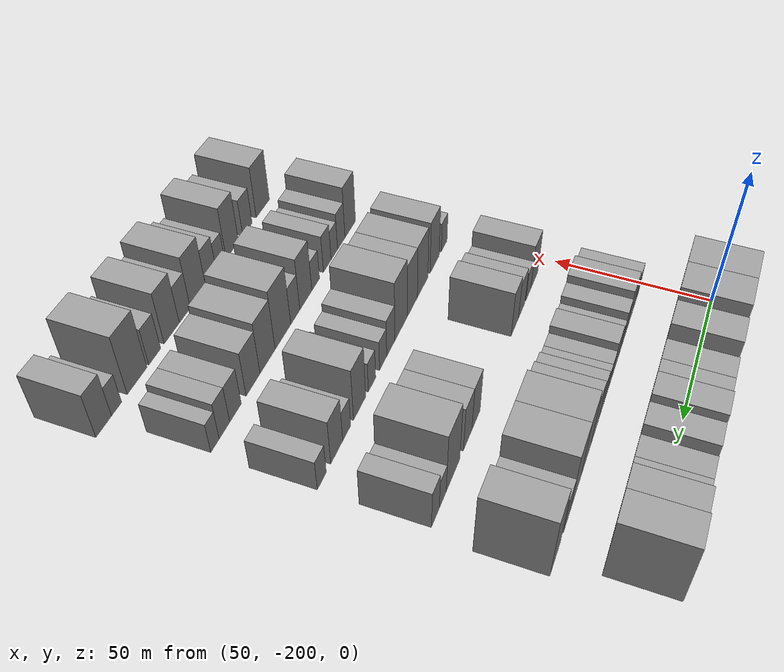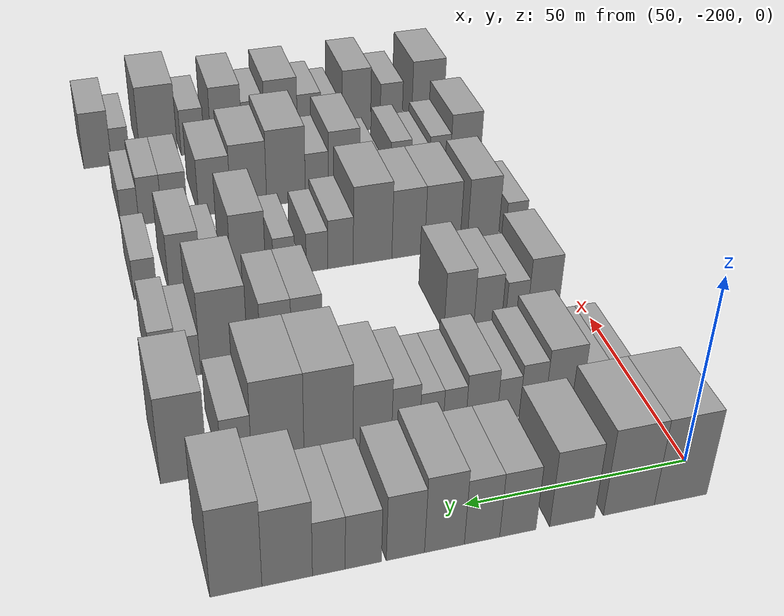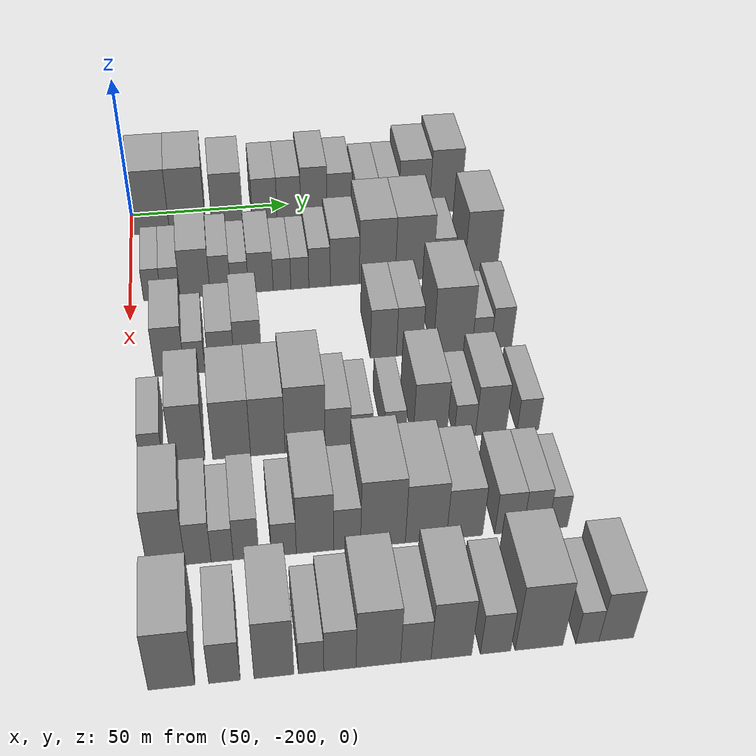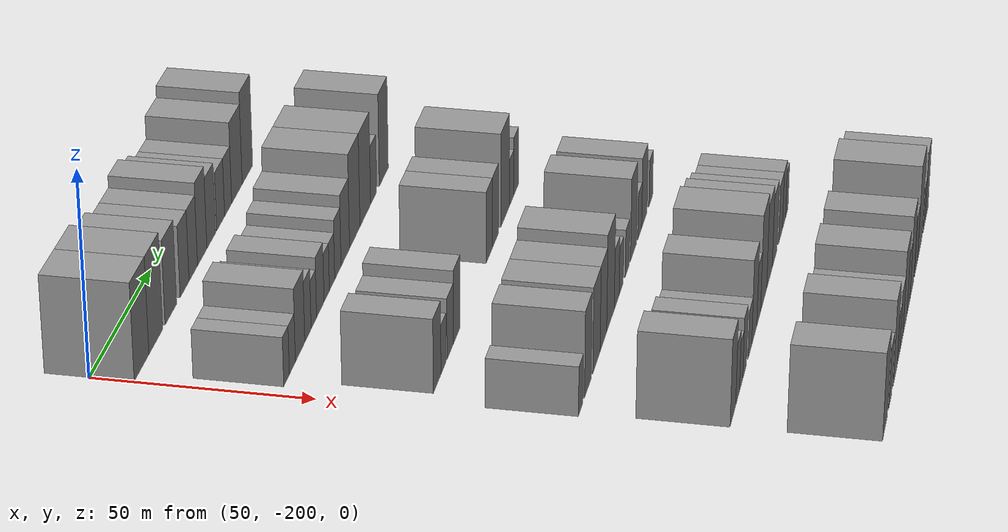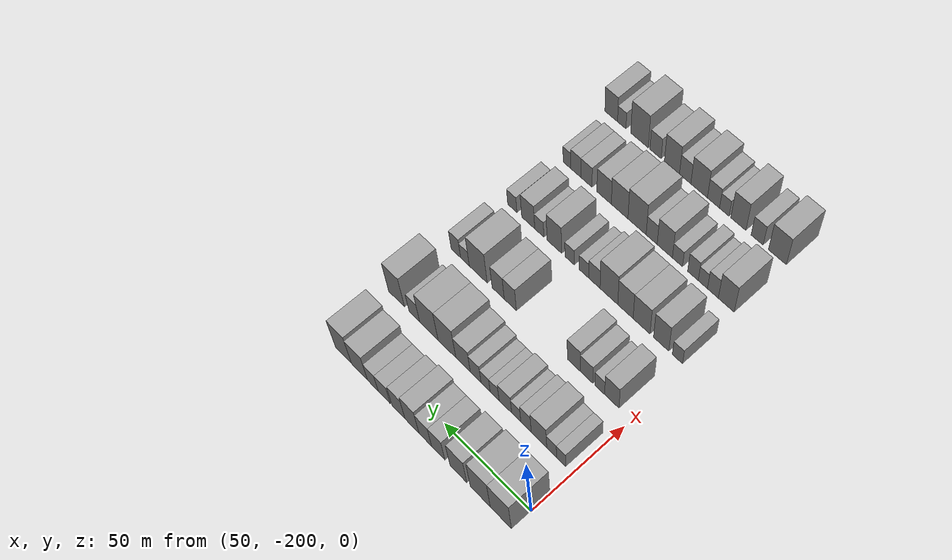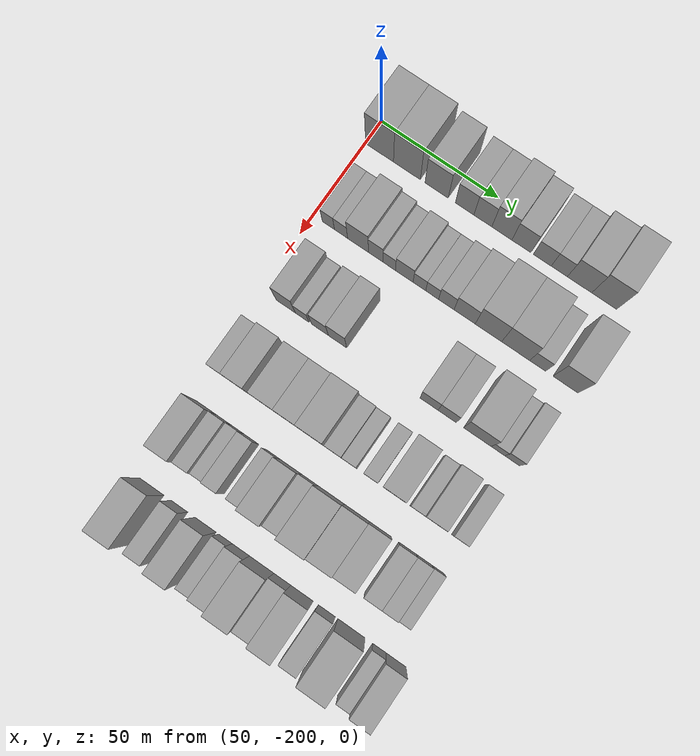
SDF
<sdf version="1.6">
 <world name="default">
  <model name="building_36">
   <static>1</static>
   <pose>50.0000 -193.8844 0 0.000000 0.000000 0.000000</pose>
   <link name="link">
    <pose>0 0 12.00 0 0 0</pose>
    <collision name="collision"><geometry><box><size>20.0000 11.9434 24.0000</size></box></geometry></collision>
    <visual name="visual">
     <cast_shadows>0</cast_shadows>
     <geometry><box><size>20.0000 11.9434 24.0000</size></box></geometry>
     <material>
      <script>
       <uri>model://grey_wall/materials/scripts</uri>
       <uri>model://grey_wall/materials/textures</uri>
       <name>vrc/grey_wall</name>
      </script>
     </material>
    </visual>
   </link>
  </model>
  <model name="building_37">
   <static>1</static>
   <pose>50.0000 -182.1937 0 0.000000 0.000000 0.000000</pose>
   <link name="link">
    <pose>0 0 12.00 0 0 0</pose>
    <collision name="collision"><geometry><box><size>20.0000 11.4381 24.0000</size></box></geometry></collision>
    <visual name="visual">
     <cast_shadows>0</cast_shadows>
     <geometry><box><size>20.0000 11.4381 24.0000</size></box></geometry>
     <material>
      <script>
       <uri>model://grey_wall/materials/scripts</uri>
       <uri>model://grey_wall/materials/textures</uri>
       <name>vrc/grey_wall</name>
      </script>
     </material>
    </visual>
   </link>
  </model>
  <model name="building_38">
   <static>1</static>
   <pose>50.0000 -169.5516 0 0.000000 0.000000 0.000000</pose>
   <link name="link">
    <pose>0 0 10.50 0 0 0</pose>
    <collision name="collision"><geometry><box><size>20.0000 9.8461 21.0000</size></box></geometry></collision>
    <visual name="visual">
     <cast_shadows>0</cast_shadows>
     <geometry><box><size>20.0000 9.8461 21.0000</size></box></geometry>
     <material>
      <script>
       <uri>model://grey_wall/materials/scripts</uri>
       <uri>model://grey_wall/materials/textures</uri>
       <name>vrc/grey_wall</name>
      </script>
     </material>
    </visual>
   </link>
  </model>
  <model name="building_39">
   <static>1</static>
   <pose>50.0000 -157.7126 0 0.000000 0.000000 0.000000</pose>
   <link name="link">
    <pose>0 0 9.00 0 0 0</pose>
    <collision name="collision"><geometry><box><size>20.0000 7.8317 18.0000</size></box></geometry></collision>
    <visual name="visual">
     <cast_shadows>0</cast_shadows>
     <geometry><box><size>20.0000 7.8317 18.0000</size></box></geometry>
     <material>
      <script>
       <uri>model://grey_wall/materials/scripts</uri>
       <uri>model://grey_wall/materials/textures</uri>
       <name>vrc/grey_wall</name>
      </script>
     </material>
    </visual>
   </link>
  </model>
  <model name="building_40">
   <static>1</static>
   <pose>50.0000 -150.0281 0 0.000000 0.000000 0.000000</pose>
   <link name="link">
    <pose>0 0 9.00 0 0 0</pose>
    <collision name="collision"><geometry><box><size>20.0000 7.5374 18.0000</size></box></geometry></collision>
    <visual name="visual">
     <cast_shadows>0</cast_shadows>
     <geometry><box><size>20.0000 7.5374 18.0000</size></box></geometry>
     <material>
      <script>
       <uri>model://grey_wall/materials/scripts</uri>
       <uri>model://grey_wall/materials/textures</uri>
       <name>vrc/grey_wall</name>
      </script>
     </material>
    </visual>
   </link>
  </model>
  <model name="building_41">
   <static>1</static>
   <pose>50.0000 -142.0535 0 0.000000 0.000000 0.000000</pose>
   <link name="link">
    <pose>0 0 10.50 0 0 0</pose>
    <collision name="collision"><geometry><box><size>20.0000 8.4118 21.0000</size></box></geometry></collision>
    <visual name="visual">
     <cast_shadows>0</cast_shadows>
     <geometry><box><size>20.0000 8.4118 21.0000</size></box></geometry>
     <material>
      <script>
       <uri>model://grey_wall/materials/scripts</uri>
       <uri>model://grey_wall/materials/textures</uri>
       <name>vrc/grey_wall</name>
      </script>
     </material>
    </visual>
   </link>
  </model>
  <model name="building_42">
   <static>1</static>
   <pose>50.0000 -133.8638 0 0.000000 0.000000 0.000000</pose>
   <link name="link">
    <pose>0 0 9.00 0 0 0</pose>
    <collision name="collision"><geometry><box><size>20.0000 7.9675 18.0000</size></box></geometry></collision>
    <visual name="visual">
     <cast_shadows>0</cast_shadows>
     <geometry><box><size>20.0000 7.9675 18.0000</size></box></geometry>
     <material>
      <script>
       <uri>model://grey_wall/materials/scripts</uri>
       <uri>model://grey_wall/materials/textures</uri>
       <name>vrc/grey_wall</name>
      </script>
     </material>
    </visual>
   </link>
  </model>
  <model name="building_43">
   <static>1</static>
   <pose>50.0000 -125.1613 0 0.000000 0.000000 0.000000</pose>
   <link name="link">
    <pose>0 0 7.50 0 0 0</pose>
    <collision name="collision"><geometry><box><size>20.0000 7.4376 15.0000</size></box></geometry></collision>
    <visual name="visual">
     <cast_shadows>0</cast_shadows>
     <geometry><box><size>20.0000 7.4376 15.0000</size></box></geometry>
     <material>
      <script>
       <uri>model://grey_wall/materials/scripts</uri>
       <uri>model://grey_wall/materials/textures</uri>
       <name>vrc/grey_wall</name>
      </script>
     </material>
    </visual>
   </link>
  </model>
  <model name="building_44">
   <static>1</static>
   <pose>50.0000 -118.1211 0 0.000000 0.000000 0.000000</pose>
   <link name="link">
    <pose>0 0 7.50 0 0 0</pose>
    <collision name="collision"><geometry><box><size>20.0000 6.6428 15.0000</size></box></geometry></collision>
    <visual name="visual">
     <cast_shadows>0</cast_shadows>
     <geometry><box><size>20.0000 6.6428 15.0000</size></box></geometry>
     <material>
      <script>
       <uri>model://grey_wall/materials/scripts</uri>
       <uri>model://grey_wall/materials/textures</uri>
       <name>vrc/grey_wall</name>
      </script>
     </material>
    </visual>
   </link>
  </model>
  <model name="building_45">
   <static>1</static>
   <pose>50.0000 -109.7506 0 0.000000 0.000000 0.000000</pose>
   <link name="link">
    <pose>0 0 10.50 0 0 0</pose>
    <collision name="collision"><geometry><box><size>20.0000 10.0981 21.0000</size></box></geometry></collision>
    <visual name="visual">
     <cast_shadows>0</cast_shadows>
     <geometry><box><size>20.0000 10.0981 21.0000</size></box></geometry>
     <material>
      <script>
       <uri>model://grey_wall/materials/scripts</uri>
       <uri>model://grey_wall/materials/textures</uri>
       <name>vrc/grey_wall</name>
      </script>
     </material>
    </visual>
   </link>
  </model>
  <model name="building_46">
   <static>1</static>
   <pose>50.0000 -99.5699 0 0.000000 0.000000 0.000000</pose>
   <link name="link">
    <pose>0 0 12.00 0 0 0</pose>
    <collision name="collision"><geometry><box><size>20.0000 10.2633 24.0000</size></box></geometry></collision>
    <visual name="visual">
     <cast_shadows>0</cast_shadows>
     <geometry><box><size>20.0000 10.2633 24.0000</size></box></geometry>
     <material>
      <script>
       <uri>model://grey_wall/materials/scripts</uri>
       <uri>model://grey_wall/materials/textures</uri>
       <name>vrc/grey_wall</name>
      </script>
     </material>
    </visual>
   </link>
  </model>
  <model name="building_155">
   <static>1</static>
   <pose>82.0000 -193.5159 0 0.000000 0.000000 0.000000</pose>
   <link name="link">
    <pose>0 0 6.00 0 0 0</pose>
    <collision name="collision"><geometry><box><size>20.0000 5.1642 12.0000</size></box></geometry></collision>
    <visual name="visual">
     <cast_shadows>0</cast_shadows>
     <geometry><box><size>20.0000 5.1642 12.0000</size></box></geometry>
     <material>
      <script>
       <uri>model://grey_wall/materials/scripts</uri>
       <uri>model://grey_wall/materials/textures</uri>
       <name>vrc/grey_wall</name>
      </script>
     </material>
    </visual>
   </link>
  </model>
  <model name="building_156">
   <static>1</static>
   <pose>82.0000 -188.1320 0 0.000000 0.000000 0.000000</pose>
   <link name="link">
    <pose>0 0 6.00 0 0 0</pose>
    <collision name="collision"><geometry><box><size>20.0000 5.6036 12.0000</size></box></geometry></collision>
    <visual name="visual">
     <cast_shadows>0</cast_shadows>
     <geometry><box><size>20.0000 5.6036 12.0000</size></box></geometry>
     <material>
      <script>
       <uri>model://grey_wall/materials/scripts</uri>
       <uri>model://grey_wall/materials/textures</uri>
       <name>vrc/grey_wall</name>
      </script>
     </material>
    </visual>
   </link>
  </model>
  <model name="building_157">
   <static>1</static>
   <pose>82.0000 -180.8897 0 0.000000 0.000000 0.000000</pose>
   <link name="link">
    <pose>0 0 9.00 0 0 0</pose>
    <collision name="collision"><geometry><box><size>20.0000 8.8810 18.0000</size></box></geometry></collision>
    <visual name="visual">
     <cast_shadows>0</cast_shadows>
     <geometry><box><size>20.0000 8.8810 18.0000</size></box></geometry>
     <material>
      <script>
       <uri>model://grey_wall/materials/scripts</uri>
       <uri>model://grey_wall/materials/textures</uri>
       <name>vrc/grey_wall</name>
      </script>
     </material>
    </visual>
   </link>
  </model>
  <model name="building_158">
   <static>1</static>
   <pose>82.0000 -173.4260 0 0.000000 0.000000 0.000000</pose>
   <link name="link">
    <pose>0 0 7.50 0 0 0</pose>
    <collision name="collision"><geometry><box><size>20.0000 6.0465 15.0000</size></box></geometry></collision>
    <visual name="visual">
     <cast_shadows>0</cast_shadows>
     <geometry><box><size>20.0000 6.0465 15.0000</size></box></geometry>
     <material>
      <script>
       <uri>model://grey_wall/materials/scripts</uri>
       <uri>model://grey_wall/materials/textures</uri>
       <name>vrc/grey_wall</name>
      </script>
     </material>
    </visual>
   </link>
  </model>
  <model name="building_159">
   <static>1</static>
   <pose>82.0000 -167.7476 0 0.000000 0.000000 0.000000</pose>
   <link name="link">
    <pose>0 0 6.00 0 0 0</pose>
    <collision name="collision"><geometry><box><size>20.0000 5.3101 12.0000</size></box></geometry></collision>
    <visual name="visual">
     <cast_shadows>0</cast_shadows>
     <geometry><box><size>20.0000 5.3101 12.0000</size></box></geometry>
     <material>
      <script>
       <uri>model://grey_wall/materials/scripts</uri>
       <uri>model://grey_wall/materials/textures</uri>
       <name>vrc/grey_wall</name>
      </script>
     </material>
    </visual>
   </link>
  </model>
  <model name="building_160">
   <static>1</static>
   <pose>82.0000 -161.4004 0 0.000000 0.000000 0.000000</pose>
   <link name="link">
    <pose>0 0 7.50 0 0 0</pose>
    <collision name="collision"><geometry><box><size>20.0000 7.3844 15.0000</size></box></geometry></collision>
    <visual name="visual">
     <cast_shadows>0</cast_shadows>
     <geometry><box><size>20.0000 7.3844 15.0000</size></box></geometry>
     <material>
      <script>
       <uri>model://grey_wall/materials/scripts</uri>
       <uri>model://grey_wall/materials/textures</uri>
       <name>vrc/grey_wall</name>
      </script>
     </material>
    </visual>
   </link>
  </model>
  <model name="building_161">
   <static>1</static>
   <pose>82.0000 -155.0652 0 0.000000 0.000000 0.000000</pose>
   <link name="link">
    <pose>0 0 6.00 0 0 0</pose>
    <collision name="collision"><geometry><box><size>20.0000 5.2860 12.0000</size></box></geometry></collision>
    <visual name="visual">
     <cast_shadows>0</cast_shadows>
     <geometry><box><size>20.0000 5.2860 12.0000</size></box></geometry>
     <material>
      <script>
       <uri>model://grey_wall/materials/scripts</uri>
       <uri>model://grey_wall/materials/textures</uri>
       <name>vrc/grey_wall</name>
      </script>
     </material>
    </visual>
   </link>
  </model>
  <model name="building_162">
   <static>1</static>
   <pose>82.0000 -149.7202 0 0.000000 0.000000 0.000000</pose>
   <link name="link">
    <pose>0 0 6.00 0 0 0</pose>
    <collision name="collision"><geometry><box><size>20.0000 5.4039 12.0000</size></box></geometry></collision>
    <visual name="visual">
     <cast_shadows>0</cast_shadows>
     <geometry><box><size>20.0000 5.4039 12.0000</size></box></geometry>
     <material>
      <script>
       <uri>model://grey_wall/materials/scripts</uri>
       <uri>model://grey_wall/materials/textures</uri>
       <name>vrc/grey_wall</name>
      </script>
     </material>
    </visual>
   </link>
  </model>
  <model name="building_163">
   <static>1</static>
   <pose>82.0000 -143.7997 0 0.000000 0.000000 0.000000</pose>
   <link name="link">
    <pose>0 0 7.50 0 0 0</pose>
    <collision name="collision"><geometry><box><size>20.0000 6.4373 15.0000</size></box></geometry></collision>
    <visual name="visual">
     <cast_shadows>0</cast_shadows>
     <geometry><box><size>20.0000 6.4373 15.0000</size></box></geometry>
     <material>
      <script>
       <uri>model://grey_wall/materials/scripts</uri>
       <uri>model://grey_wall/materials/textures</uri>
       <name>vrc/grey_wall</name>
      </script>
     </material>
    </visual>
   </link>
  </model>
  <model name="building_164">
   <static>1</static>
   <pose>82.0000 -136.1888 0 0.000000 0.000000 0.000000</pose>
   <link name="link">
    <pose>0 0 9.00 0 0 0</pose>
    <collision name="collision"><geometry><box><size>20.0000 8.7845 18.0000</size></box></geometry></collision>
    <visual name="visual">
     <cast_shadows>0</cast_shadows>
     <geometry><box><size>20.0000 8.7845 18.0000</size></box></geometry>
     <material>
      <script>
       <uri>model://grey_wall/materials/scripts</uri>
       <uri>model://grey_wall/materials/textures</uri>
       <name>vrc/grey_wall</name>
      </script>
     </material>
    </visual>
   </link>
  </model>
  <model name="building_165">
   <static>1</static>
   <pose>82.0000 -126.3332 0 0.000000 0.000000 0.000000</pose>
   <link name="link">
    <pose>0 0 12.00 0 0 0</pose>
    <collision name="collision"><geometry><box><size>20.0000 10.9266 24.0000</size></box></geometry></collision>
    <visual name="visual">
     <cast_shadows>0</cast_shadows>
     <geometry><box><size>20.0000 10.9266 24.0000</size></box></geometry>
     <material>
      <script>
       <uri>model://grey_wall/materials/scripts</uri>
       <uri>model://grey_wall/materials/textures</uri>
       <name>vrc/grey_wall</name>
      </script>
     </material>
    </visual>
   </link>
  </model>
  <model name="building_166">
   <static>1</static>
   <pose>82.0000 -115.1122 0 0.000000 0.000000 0.000000</pose>
   <link name="link">
    <pose>0 0 12.00 0 0 0</pose>
    <collision name="collision"><geometry><box><size>20.0000 11.5154 24.0000</size></box></geometry></collision>
    <visual name="visual">
     <cast_shadows>0</cast_shadows>
     <geometry><box><size>20.0000 11.5154 24.0000</size></box></geometry>
     <material>
      <script>
       <uri>model://grey_wall/materials/scripts</uri>
       <uri>model://grey_wall/materials/textures</uri>
       <name>vrc/grey_wall</name>
      </script>
     </material>
    </visual>
   </link>
  </model>
  <model name="building_167">
   <static>1</static>
   <pose>82.0000 -106.0651 0 0.000000 0.000000 0.000000</pose>
   <link name="link">
    <pose>0 0 7.50 0 0 0</pose>
    <collision name="collision"><geometry><box><size>20.0000 6.5788 15.0000</size></box></geometry></collision>
    <visual name="visual">
     <cast_shadows>0</cast_shadows>
     <geometry><box><size>20.0000 6.5788 15.0000</size></box></geometry>
     <material>
      <script>
       <uri>model://grey_wall/materials/scripts</uri>
       <uri>model://grey_wall/materials/textures</uri>
       <name>vrc/grey_wall</name>
      </script>
     </material>
    </visual>
   </link>
  </model>
  <model name="building_168">
   <static>1</static>
   <pose>82.0000 -94.7246 0 0.000000 0.000000 0.000000</pose>
   <link name="link">
    <pose>0 0 12.00 0 0 0</pose>
    <collision name="collision"><geometry><box><size>20.0000 10.1022 24.0000</size></box></geometry></collision>
    <visual name="visual">
     <cast_shadows>0</cast_shadows>
     <geometry><box><size>20.0000 10.1022 24.0000</size></box></geometry>
     <material>
      <script>
       <uri>model://grey_wall/materials/scripts</uri>
       <uri>model://grey_wall/materials/textures</uri>
       <name>vrc/grey_wall</name>
      </script>
     </material>
    </visual>
   </link>
  </model>
  <model name="building_280">
   <static>1</static>
   <pose>114.0000 -188.9431 0 0.000000 0.000000 0.000000</pose>
   <link name="link">
    <pose>0 0 9.00 0 0 0</pose>
    <collision name="collision"><geometry><box><size>20.0000 8.1288 18.0000</size></box></geometry></collision>
    <visual name="visual">
     <cast_shadows>0</cast_shadows>
     <geometry><box><size>20.0000 8.1288 18.0000</size></box></geometry>
     <material>
      <script>
       <uri>model://grey_wall/materials/scripts</uri>
       <uri>model://grey_wall/materials/textures</uri>
       <name>vrc/grey_wall</name>
      </script>
     </material>
    </visual>
   </link>
  </model>
  <model name="building_281">
   <static>1</static>
   <pose>114.0000 -182.0448 0 0.000000 0.000000 0.000000</pose>
   <link name="link">
    <pose>0 0 6.00 0 0 0</pose>
    <collision name="collision"><geometry><box><size>20.0000 5.6677 12.0000</size></box></geometry></collision>
    <visual name="visual">
     <cast_shadows>0</cast_shadows>
     <geometry><box><size>20.0000 5.6677 12.0000</size></box></geometry>
     <material>
      <script>
       <uri>model://grey_wall/materials/scripts</uri>
       <uri>model://grey_wall/materials/textures</uri>
       <name>vrc/grey_wall</name>
      </script>
     </material>
    </visual>
   </link>
  </model>
  <model name="building_282">
   <static>1</static>
   <pose>114.0000 -174.6232 0 0.000000 0.000000 0.000000</pose>
   <link name="link">
    <pose>0 0 7.50 0 0 0</pose>
    <collision name="collision"><geometry><box><size>20.0000 7.1756 15.0000</size></box></geometry></collision>
    <visual name="visual">
     <cast_shadows>0</cast_shadows>
     <geometry><box><size>20.0000 7.1756 15.0000</size></box></geometry>
     <material>
      <script>
       <uri>model://grey_wall/materials/scripts</uri>
       <uri>model://grey_wall/materials/textures</uri>
       <name>vrc/grey_wall</name>
      </script>
     </material>
    </visual>
   </link>
  </model>
  <model name="building_283">
   <static>1</static>
   <pose>114.0000 -167.2293 0 0.000000 0.000000 0.000000</pose>
   <link name="link">
    <pose>0 0 9.00 0 0 0</pose>
    <collision name="collision"><geometry><box><size>20.0000 7.6121 18.0000</size></box></geometry></collision>
    <visual name="visual">
     <cast_shadows>0</cast_shadows>
     <geometry><box><size>20.0000 7.6121 18.0000</size></box></geometry>
     <material>
      <script>
       <uri>model://grey_wall/materials/scripts</uri>
       <uri>model://grey_wall/materials/textures</uri>
       <name>vrc/grey_wall</name>
      </script>
     </material>
    </visual>
   </link>
  </model>
  <model name="building_284">
   <static>1</static>
   <pose>114.0000 -129.2963 0 0.000000 0.000000 0.000000</pose>
   <link name="link">
    <pose>0 0 9.00 0 0 0</pose>
    <collision name="collision"><geometry><box><size>20.0000 7.4180 18.0000</size></box></geometry></collision>
    <visual name="visual">
     <cast_shadows>0</cast_shadows>
     <geometry><box><size>20.0000 7.4180 18.0000</size></box></geometry>
     <material>
      <script>
       <uri>model://grey_wall/materials/scripts</uri>
       <uri>model://grey_wall/materials/textures</uri>
       <name>vrc/grey_wall</name>
      </script>
     </material>
    </visual>
   </link>
  </model>
  <model name="building_285">
   <static>1</static>
   <pose>114.0000 -121.8558 0 0.000000 0.000000 0.000000</pose>
   <link name="link">
    <pose>0 0 9.00 0 0 0</pose>
    <collision name="collision"><geometry><box><size>20.0000 7.4631 18.0000</size></box></geometry></collision>
    <visual name="visual">
     <cast_shadows>0</cast_shadows>
     <geometry><box><size>20.0000 7.4631 18.0000</size></box></geometry>
     <material>
      <script>
       <uri>model://grey_wall/materials/scripts</uri>
       <uri>model://grey_wall/materials/textures</uri>
       <name>vrc/grey_wall</name>
      </script>
     </material>
    </visual>
   </link>
  </model>
  <model name="building_286">
   <static>1</static>
   <pose>114.0000 -109.5274 0 0.000000 0.000000 0.000000</pose>
   <link name="link">
    <pose>0 0 12.00 0 0 0</pose>
    <collision name="collision"><geometry><box><size>20.0000 11.1936 24.0000</size></box></geometry></collision>
    <visual name="visual">
     <cast_shadows>0</cast_shadows>
     <geometry><box><size>20.0000 11.1936 24.0000</size></box></geometry>
     <material>
      <script>
       <uri>model://grey_wall/materials/scripts</uri>
       <uri>model://grey_wall/materials/textures</uri>
       <name>vrc/grey_wall</name>
      </script>
     </material>
    </visual>
   </link>
  </model>
  <model name="building_287">
   <static>1</static>
   <pose>114.0000 -101.1994 0 0.000000 0.000000 0.000000</pose>
   <link name="link">
    <pose>0 0 6.00 0 0 0</pose>
    <collision name="collision"><geometry><box><size>20.0000 5.4625 12.0000</size></box></geometry></collision>
    <visual name="visual">
     <cast_shadows>0</cast_shadows>
     <geometry><box><size>20.0000 5.4625 12.0000</size></box></geometry>
     <material>
      <script>
       <uri>model://grey_wall/materials/scripts</uri>
       <uri>model://grey_wall/materials/textures</uri>
       <name>vrc/grey_wall</name>
      </script>
     </material>
    </visual>
   </link>
  </model>
  <model name="building_288">
   <static>1</static>
   <pose>114.0000 -95.4665 0 0.000000 0.000000 0.000000</pose>
   <link name="link">
    <pose>0 0 7.50 0 0 0</pose>
    <collision name="collision"><geometry><box><size>20.0000 6.0031 15.0000</size></box></geometry></collision>
    <visual name="visual">
     <cast_shadows>0</cast_shadows>
     <geometry><box><size>20.0000 6.0031 15.0000</size></box></geometry>
     <material>
      <script>
       <uri>model://grey_wall/materials/scripts</uri>
       <uri>model://grey_wall/materials/textures</uri>
       <name>vrc/grey_wall</name>
      </script>
     </material>
    </visual>
   </link>
  </model>
  <model name="building_395">
   <static>1</static>
   <pose>146.0000 -194.0923 0 0.000000 0.000000 0.000000</pose>
   <link name="link">
    <pose>0 0 6.00 0 0 0</pose>
    <collision name="collision"><geometry><box><size>20.0000 5.7662 12.0000</size></box></geometry></collision>
    <visual name="visual">
     <cast_shadows>0</cast_shadows>
     <geometry><box><size>20.0000 5.7662 12.0000</size></box></geometry>
     <material>
      <script>
       <uri>model://grey_wall/materials/scripts</uri>
       <uri>model://grey_wall/materials/textures</uri>
       <name>vrc/grey_wall</name>
      </script>
     </material>
    </visual>
   </link>
  </model>
  <model name="building_396">
   <static>1</static>
   <pose>146.0000 -184.8629 0 0.000000 0.000000 0.000000</pose>
   <link name="link">
    <pose>0 0 10.50 0 0 0</pose>
    <collision name="collision"><geometry><box><size>20.0000 8.6927 21.0000</size></box></geometry></collision>
    <visual name="visual">
     <cast_shadows>0</cast_shadows>
     <geometry><box><size>20.0000 8.6927 21.0000</size></box></geometry>
     <material>
      <script>
       <uri>model://grey_wall/materials/scripts</uri>
       <uri>model://grey_wall/materials/textures</uri>
       <name>vrc/grey_wall</name>
      </script>
     </material>
    </visual>
   </link>
  </model>
  <model name="building_397">
   <static>1</static>
   <pose>146.0000 -173.6472 0 0.000000 0.000000 0.000000</pose>
   <link name="link">
    <pose>0 0 10.50 0 0 0</pose>
    <collision name="collision"><geometry><box><size>20.0000 9.7388 21.0000</size></box></geometry></collision>
    <visual name="visual">
     <cast_shadows>0</cast_shadows>
     <geometry><box><size>20.0000 9.7388 21.0000</size></box></geometry>
     <material>
      <script>
       <uri>model://grey_wall/materials/scripts</uri>
       <uri>model://grey_wall/materials/textures</uri>
       <name>vrc/grey_wall</name>
      </script>
     </material>
    </visual>
   </link>
  </model>
  <model name="building_398">
   <static>1</static>
   <pose>146.0000 -164.3111 0 0.000000 0.000000 0.000000</pose>
   <link name="link">
    <pose>0 0 10.50 0 0 0</pose>
    <collision name="collision"><geometry><box><size>20.0000 8.9334 21.0000</size></box></geometry></collision>
    <visual name="visual">
     <cast_shadows>0</cast_shadows>
     <geometry><box><size>20.0000 8.9334 21.0000</size></box></geometry>
     <material>
      <script>
       <uri>model://grey_wall/materials/scripts</uri>
       <uri>model://grey_wall/materials/textures</uri>
       <name>vrc/grey_wall</name>
      </script>
     </material>
    </visual>
   </link>
  </model>
  <model name="building_399">
   <static>1</static>
   <pose>146.0000 -154.6251 0 0.000000 0.000000 0.000000</pose>
   <link name="link">
    <pose>0 0 12.00 0 0 0</pose>
    <collision name="collision"><geometry><box><size>20.0000 10.4385 24.0000</size></box></geometry></collision>
    <visual name="visual">
     <cast_shadows>0</cast_shadows>
     <geometry><box><size>20.0000 10.4385 24.0000</size></box></geometry>
     <material>
      <script>
       <uri>model://grey_wall/materials/scripts</uri>
       <uri>model://grey_wall/materials/textures</uri>
       <name>vrc/grey_wall</name>
      </script>
     </material>
    </visual>
   </link>
  </model>
  <model name="building_400">
   <static>1</static>
   <pose>146.0000 -146.0442 0 0.000000 0.000000 0.000000</pose>
   <link name="link">
    <pose>0 0 7.50 0 0 0</pose>
    <collision name="collision"><geometry><box><size>20.0000 6.7233 15.0000</size></box></geometry></collision>
    <visual name="visual">
     <cast_shadows>0</cast_shadows>
     <geometry><box><size>20.0000 6.7233 15.0000</size></box></geometry>
     <material>
      <script>
       <uri>model://grey_wall/materials/scripts</uri>
       <uri>model://grey_wall/materials/textures</uri>
       <name>vrc/grey_wall</name>
      </script>
     </material>
    </visual>
   </link>
  </model>
  <model name="building_401">
   <static>1</static>
   <pose>146.0000 -139.8177 0 0.000000 0.000000 0.000000</pose>
   <link name="link">
    <pose>0 0 6.00 0 0 0</pose>
    <collision name="collision"><geometry><box><size>20.0000 5.7298 12.0000</size></box></geometry></collision>
    <visual name="visual">
     <cast_shadows>0</cast_shadows>
     <geometry><box><size>20.0000 5.7298 12.0000</size></box></geometry>
     <material>
      <script>
       <uri>model://grey_wall/materials/scripts</uri>
       <uri>model://grey_wall/materials/textures</uri>
       <name>vrc/grey_wall</name>
      </script>
     </material>
    </visual>
   </link>
  </model>
  <model name="building_402">
   <static>1</static>
   <pose>146.0000 -131.1283 0 0.000000 0.000000 0.000000</pose>
   <link name="link">
    <pose>0 0 6.00 0 0 0</pose>
    <collision name="collision"><geometry><box><size>20.0000 5.6490 12.0000</size></box></geometry></collision>
    <visual name="visual">
     <cast_shadows>0</cast_shadows>
     <geometry><box><size>20.0000 5.6490 12.0000</size></box></geometry>
     <material>
      <script>
       <uri>model://grey_wall/materials/scripts</uri>
       <uri>model://grey_wall/materials/textures</uri>
       <name>vrc/grey_wall</name>
      </script>
     </material>
    </visual>
   </link>
  </model>
  <model name="building_403">
   <static>1</static>
   <pose>146.0000 -121.8297 0 0.000000 0.000000 0.000000</pose>
   <link name="link">
    <pose>0 0 10.50 0 0 0</pose>
    <collision name="collision"><geometry><box><size>20.0000 8.9483 21.0000</size></box></geometry></collision>
    <visual name="visual">
     <cast_shadows>0</cast_shadows>
     <geometry><box><size>20.0000 8.9483 21.0000</size></box></geometry>
     <material>
      <script>
       <uri>model://grey_wall/materials/scripts</uri>
       <uri>model://grey_wall/materials/textures</uri>
       <name>vrc/grey_wall</name>
      </script>
     </material>
    </visual>
   </link>
  </model>
  <model name="building_404">
   <static>1</static>
   <pose>146.0000 -112.5162 0 0.000000 0.000000 0.000000</pose>
   <link name="link">
    <pose>0 0 6.00 0 0 0</pose>
    <collision name="collision"><geometry><box><size>20.0000 5.6787 12.0000</size></box></geometry></collision>
    <visual name="visual">
     <cast_shadows>0</cast_shadows>
     <geometry><box><size>20.0000 5.6787 12.0000</size></box></geometry>
     <material>
      <script>
       <uri>model://grey_wall/materials/scripts</uri>
       <uri>model://grey_wall/materials/textures</uri>
       <name>vrc/grey_wall</name>
      </script>
     </material>
    </visual>
   </link>
  </model>
  <model name="building_405">
   <static>1</static>
   <pose>146.0000 -105.5945 0 0.000000 0.000000 0.000000</pose>
   <link name="link">
    <pose>0 0 9.00 0 0 0</pose>
    <collision name="collision"><geometry><box><size>20.0000 8.1646 18.0000</size></box></geometry></collision>
    <visual name="visual">
     <cast_shadows>0</cast_shadows>
     <geometry><box><size>20.0000 8.1646 18.0000</size></box></geometry>
     <material>
      <script>
       <uri>model://grey_wall/materials/scripts</uri>
       <uri>model://grey_wall/materials/textures</uri>
       <name>vrc/grey_wall</name>
      </script>
     </material>
    </visual>
   </link>
  </model>
  <model name="building_406">
   <static>1</static>
   <pose>146.0000 -95.5960 0 0.000000 0.000000 0.000000</pose>
   <link name="link">
    <pose>0 0 6.00 0 0 0</pose>
    <collision name="collision"><geometry><box><size>20.0000 5.8324 12.0000</size></box></geometry></collision>
    <visual name="visual">
     <cast_shadows>0</cast_shadows>
     <geometry><box><size>20.0000 5.8324 12.0000</size></box></geometry>
     <material>
      <script>
       <uri>model://grey_wall/materials/scripts</uri>
       <uri>model://grey_wall/materials/textures</uri>
       <name>vrc/grey_wall</name>
      </script>
     </material>
    </visual>
   </link>
  </model>
  <model name="building_515">
   <static>1</static>
   <pose>178.0000 -190.9835 0 0.000000 0.000000 0.000000</pose>
   <link name="link">
    <pose>0 0 10.50 0 0 0</pose>
    <collision name="collision"><geometry><box><size>20.0000 8.9903 21.0000</size></box></geometry></collision>
    <visual name="visual">
     <cast_shadows>0</cast_shadows>
     <geometry><box><size>20.0000 8.9903 21.0000</size></box></geometry>
     <material>
      <script>
       <uri>model://grey_wall/materials/scripts</uri>
       <uri>model://grey_wall/materials/textures</uri>
       <name>vrc/grey_wall</name>
      </script>
     </material>
    </visual>
   </link>
  </model>
  <model name="building_516">
   <static>1</static>
   <pose>178.0000 -183.4080 0 0.000000 0.000000 0.000000</pose>
   <link name="link">
    <pose>0 0 7.50 0 0 0</pose>
    <collision name="collision"><geometry><box><size>20.0000 6.1605 15.0000</size></box></geometry></collision>
    <visual name="visual">
     <cast_shadows>0</cast_shadows>
     <geometry><box><size>20.0000 6.1605 15.0000</size></box></geometry>
     <material>
      <script>
       <uri>model://grey_wall/materials/scripts</uri>
       <uri>model://grey_wall/materials/textures</uri>
       <name>vrc/grey_wall</name>
      </script>
     </material>
    </visual>
   </link>
  </model>
  <model name="building_517">
   <static>1</static>
   <pose>178.0000 -177.6864 0 0.000000 0.000000 0.000000</pose>
   <link name="link">
    <pose>0 0 6.00 0 0 0</pose>
    <collision name="collision"><geometry><box><size>20.0000 5.2828 12.0000</size></box></geometry></collision>
    <visual name="visual">
     <cast_shadows>0</cast_shadows>
     <geometry><box><size>20.0000 5.2828 12.0000</size></box></geometry>
     <material>
      <script>
       <uri>model://grey_wall/materials/scripts</uri>
       <uri>model://grey_wall/materials/textures</uri>
       <name>vrc/grey_wall</name>
      </script>
     </material>
    </visual>
   </link>
  </model>
  <model name="building_518">
   <static>1</static>
   <pose>178.0000 -171.9882 0 0.000000 0.000000 0.000000</pose>
   <link name="link">
    <pose>0 0 7.50 0 0 0</pose>
    <collision name="collision"><geometry><box><size>20.0000 6.1137 15.0000</size></box></geometry></collision>
    <visual name="visual">
     <cast_shadows>0</cast_shadows>
     <geometry><box><size>20.0000 6.1137 15.0000</size></box></geometry>
     <material>
      <script>
       <uri>model://grey_wall/materials/scripts</uri>
       <uri>model://grey_wall/materials/textures</uri>
       <name>vrc/grey_wall</name>
      </script>
     </material>
    </visual>
   </link>
  </model>
  <model name="building_519">
   <static>1</static>
   <pose>178.0000 -162.9668 0 0.000000 0.000000 0.000000</pose>
   <link name="link">
    <pose>0 0 6.00 0 0 0</pose>
    <collision name="collision"><geometry><box><size>20.0000 5.9289 12.0000</size></box></geometry></collision>
    <visual name="visual">
     <cast_shadows>0</cast_shadows>
     <geometry><box><size>20.0000 5.9289 12.0000</size></box></geometry>
     <material>
      <script>
       <uri>model://grey_wall/materials/scripts</uri>
       <uri>model://grey_wall/materials/textures</uri>
       <name>vrc/grey_wall</name>
      </script>
     </material>
    </visual>
   </link>
  </model>
  <model name="building_520">
   <static>1</static>
   <pose>178.0000 -155.5308 0 0.000000 0.000000 0.000000</pose>
   <link name="link">
    <pose>0 0 10.50 0 0 0</pose>
    <collision name="collision"><geometry><box><size>20.0000 8.9432 21.0000</size></box></geometry></collision>
    <visual name="visual">
     <cast_shadows>0</cast_shadows>
     <geometry><box><size>20.0000 8.9432 21.0000</size></box></geometry>
     <material>
      <script>
       <uri>model://grey_wall/materials/scripts</uri>
       <uri>model://grey_wall/materials/textures</uri>
       <name>vrc/grey_wall</name>
      </script>
     </material>
    </visual>
   </link>
  </model>
  <model name="building_521">
   <static>1</static>
   <pose>178.0000 -147.7754 0 0.000000 0.000000 0.000000</pose>
   <link name="link">
    <pose>0 0 7.50 0 0 0</pose>
    <collision name="collision"><geometry><box><size>20.0000 6.5675 15.0000</size></box></geometry></collision>
    <visual name="visual">
     <cast_shadows>0</cast_shadows>
     <geometry><box><size>20.0000 6.5675 15.0000</size></box></geometry>
     <material>
      <script>
       <uri>model://grey_wall/materials/scripts</uri>
       <uri>model://grey_wall/materials/textures</uri>
       <name>vrc/grey_wall</name>
      </script>
     </material>
    </visual>
   </link>
  </model>
  <model name="building_522">
   <static>1</static>
   <pose>178.0000 -139.0363 0 0.000000 0.000000 0.000000</pose>
   <link name="link">
    <pose>0 0 12.00 0 0 0</pose>
    <collision name="collision"><geometry><box><size>20.0000 10.9106 24.0000</size></box></geometry></collision>
    <visual name="visual">
     <cast_shadows>0</cast_shadows>
     <geometry><box><size>20.0000 10.9106 24.0000</size></box></geometry>
     <material>
      <script>
       <uri>model://grey_wall/materials/scripts</uri>
       <uri>model://grey_wall/materials/textures</uri>
       <name>vrc/grey_wall</name>
      </script>
     </material>
    </visual>
   </link>
  </model>
  <model name="building_523">
   <static>1</static>
   <pose>178.0000 -128.5383 0 0.000000 0.000000 0.000000</pose>
   <link name="link">
    <pose>0 0 10.50 0 0 0</pose>
    <collision name="collision"><geometry><box><size>20.0000 10.0856 21.0000</size></box></geometry></collision>
    <visual name="visual">
     <cast_shadows>0</cast_shadows>
     <geometry><box><size>20.0000 10.0856 21.0000</size></box></geometry>
     <material>
      <script>
       <uri>model://grey_wall/materials/scripts</uri>
       <uri>model://grey_wall/materials/textures</uri>
       <name>vrc/grey_wall</name>
      </script>
     </material>
    </visual>
   </link>
  </model>
  <model name="building_524">
   <static>1</static>
   <pose>178.0000 -119.0510 0 0.000000 0.000000 0.000000</pose>
   <link name="link">
    <pose>0 0 9.00 0 0 0</pose>
    <collision name="collision"><geometry><box><size>20.0000 8.8889 18.0000</size></box></geometry></collision>
    <visual name="visual">
     <cast_shadows>0</cast_shadows>
     <geometry><box><size>20.0000 8.8889 18.0000</size></box></geometry>
     <material>
      <script>
       <uri>model://grey_wall/materials/scripts</uri>
       <uri>model://grey_wall/materials/textures</uri>
       <name>vrc/grey_wall</name>
      </script>
     </material>
    </visual>
   </link>
  </model>
  <model name="building_525">
   <static>1</static>
   <pose>178.0000 -108.0852 0 0.000000 0.000000 0.000000</pose>
   <link name="link">
    <pose>0 0 7.50 0 0 0</pose>
    <collision name="collision"><geometry><box><size>20.0000 7.0427 15.0000</size></box></geometry></collision>
    <visual name="visual">
     <cast_shadows>0</cast_shadows>
     <geometry><box><size>20.0000 7.0427 15.0000</size></box></geometry>
     <material>
      <script>
       <uri>model://grey_wall/materials/scripts</uri>
       <uri>model://grey_wall/materials/textures</uri>
       <name>vrc/grey_wall</name>
      </script>
     </material>
    </visual>
   </link>
  </model>
  <model name="building_526">
   <static>1</static>
   <pose>178.0000 -101.4512 0 0.000000 0.000000 0.000000</pose>
   <link name="link">
    <pose>0 0 7.50 0 0 0</pose>
    <collision name="collision"><geometry><box><size>20.0000 6.2253 15.0000</size></box></geometry></collision>
    <visual name="visual">
     <cast_shadows>0</cast_shadows>
     <geometry><box><size>20.0000 6.2253 15.0000</size></box></geometry>
     <material>
      <script>
       <uri>model://grey_wall/materials/scripts</uri>
       <uri>model://grey_wall/materials/textures</uri>
       <name>vrc/grey_wall</name>
      </script>
     </material>
    </visual>
   </link>
  </model>
  <model name="building_527">
   <static>1</static>
   <pose>178.0000 -95.9144 0 0.000000 0.000000 0.000000</pose>
   <link name="link">
    <pose>0 0 6.00 0 0 0</pose>
    <collision name="collision"><geometry><box><size>20.0000 4.8484 12.0000</size></box></geometry></collision>
    <visual name="visual">
     <cast_shadows>0</cast_shadows>
     <geometry><box><size>20.0000 4.8484 12.0000</size></box></geometry>
     <material>
      <script>
       <uri>model://grey_wall/materials/scripts</uri>
       <uri>model://grey_wall/materials/textures</uri>
       <name>vrc/grey_wall</name>
      </script>
     </material>
    </visual>
   </link>
  </model>
  <model name="building_628">
   <static>1</static>
   <pose>210.0000 -190.3258 0 0.000000 0.000000 0.000000</pose>
   <link name="link">
    <pose>0 0 10.50 0 0 0</pose>
    <collision name="collision"><geometry><box><size>20.0000 10.1330 21.0000</size></box></geometry></collision>
    <visual name="visual">
     <cast_shadows>0</cast_shadows>
     <geometry><box><size>20.0000 10.1330 21.0000</size></box></geometry>
     <material>
      <script>
       <uri>model://grey_wall/materials/scripts</uri>
       <uri>model://grey_wall/materials/textures</uri>
       <name>vrc/grey_wall</name>
      </script>
     </material>
    </visual>
   </link>
  </model>
  <model name="building_629">
   <static>1</static>
   <pose>210.0000 -178.8081 0 0.000000 0.000000 0.000000</pose>
   <link name="link">
    <pose>0 0 7.50 0 0 0</pose>
    <collision name="collision"><geometry><box><size>20.0000 6.9025 15.0000</size></box></geometry></collision>
    <visual name="visual">
     <cast_shadows>0</cast_shadows>
     <geometry><box><size>20.0000 6.9025 15.0000</size></box></geometry>
     <material>
      <script>
       <uri>model://grey_wall/materials/scripts</uri>
       <uri>model://grey_wall/materials/textures</uri>
       <name>vrc/grey_wall</name>
      </script>
     </material>
    </visual>
   </link>
  </model>
  <model name="building_630">
   <static>1</static>
   <pose>210.0000 -167.9796 0 0.000000 0.000000 0.000000</pose>
   <link name="link">
    <pose>0 0 10.50 0 0 0</pose>
    <collision name="collision"><geometry><box><size>20.0000 8.7545 21.0000</size></box></geometry></collision>
    <visual name="visual">
     <cast_shadows>0</cast_shadows>
     <geometry><box><size>20.0000 8.7545 21.0000</size></box></geometry>
     <material>
      <script>
       <uri>model://grey_wall/materials/scripts</uri>
       <uri>model://grey_wall/materials/textures</uri>
       <name>vrc/grey_wall</name>
      </script>
     </material>
    </visual>
   </link>
  </model>
  <model name="building_631">
   <static>1</static>
   <pose>210.0000 -159.8000 0 0.000000 0.000000 0.000000</pose>
   <link name="link">
    <pose>0 0 6.00 0 0 0</pose>
    <collision name="collision"><geometry><box><size>20.0000 5.6046 12.0000</size></box></geometry></collision>
    <visual name="visual">
     <cast_shadows>0</cast_shadows>
     <geometry><box><size>20.0000 5.6046 12.0000</size></box></geometry>
     <material>
      <script>
       <uri>model://grey_wall/materials/scripts</uri>
       <uri>model://grey_wall/materials/textures</uri>
       <name>vrc/grey_wall</name>
      </script>
     </material>
    </visual>
   </link>
  </model>
  <model name="building_632">
   <static>1</static>
   <pose>210.0000 -153.4165 0 0.000000 0.000000 0.000000</pose>
   <link name="link">
    <pose>0 0 7.50 0 0 0</pose>
    <collision name="collision"><geometry><box><size>20.0000 7.1626 15.0000</size></box></geometry></collision>
    <visual name="visual">
     <cast_shadows>0</cast_shadows>
     <geometry><box><size>20.0000 7.1626 15.0000</size></box></geometry>
     <material>
      <script>
       <uri>model://grey_wall/materials/scripts</uri>
       <uri>model://grey_wall/materials/textures</uri>
       <name>vrc/grey_wall</name>
      </script>
     </material>
    </visual>
   </link>
  </model>
  <model name="building_633">
   <static>1</static>
   <pose>210.0000 -144.8827 0 0.000000 0.000000 0.000000</pose>
   <link name="link">
    <pose>0 0 10.50 0 0 0</pose>
    <collision name="collision"><geometry><box><size>20.0000 9.9049 21.0000</size></box></geometry></collision>
    <visual name="visual">
     <cast_shadows>0</cast_shadows>
     <geometry><box><size>20.0000 9.9049 21.0000</size></box></geometry>
     <material>
      <script>
       <uri>model://grey_wall/materials/scripts</uri>
       <uri>model://grey_wall/materials/textures</uri>
       <name>vrc/grey_wall</name>
      </script>
     </material>
    </visual>
   </link>
  </model>
  <model name="building_634">
   <static>1</static>
   <pose>210.0000 -136.5114 0 0.000000 0.000000 0.000000</pose>
   <link name="link">
    <pose>0 0 7.50 0 0 0</pose>
    <collision name="collision"><geometry><box><size>20.0000 6.8378 15.0000</size></box></geometry></collision>
    <visual name="visual">
     <cast_shadows>0</cast_shadows>
     <geometry><box><size>20.0000 6.8378 15.0000</size></box></geometry>
     <material>
      <script>
       <uri>model://grey_wall/materials/scripts</uri>
       <uri>model://grey_wall/materials/textures</uri>
       <name>vrc/grey_wall</name>
      </script>
     </material>
    </visual>
   </link>
  </model>
  <model name="building_635">
   <static>1</static>
   <pose>210.0000 -128.5114 0 0.000000 0.000000 0.000000</pose>
   <link name="link">
    <pose>0 0 10.50 0 0 0</pose>
    <collision name="collision"><geometry><box><size>20.0000 9.1621 21.0000</size></box></geometry></collision>
    <visual name="visual">
     <cast_shadows>0</cast_shadows>
     <geometry><box><size>20.0000 9.1621 21.0000</size></box></geometry>
     <material>
      <script>
       <uri>model://grey_wall/materials/scripts</uri>
       <uri>model://grey_wall/materials/textures</uri>
       <name>vrc/grey_wall</name>
      </script>
     </material>
    </visual>
   </link>
  </model>
  <model name="building_636">
   <static>1</static>
   <pose>210.0000 -118.4861 0 0.000000 0.000000 0.000000</pose>
   <link name="link">
    <pose>0 0 7.50 0 0 0</pose>
    <collision name="collision"><geometry><box><size>20.0000 6.8885 15.0000</size></box></geometry></collision>
    <visual name="visual">
     <cast_shadows>0</cast_shadows>
     <geometry><box><size>20.0000 6.8885 15.0000</size></box></geometry>
     <material>
      <script>
       <uri>model://grey_wall/materials/scripts</uri>
       <uri>model://grey_wall/materials/textures</uri>
       <name>vrc/grey_wall</name>
      </script>
     </material>
    </visual>
   </link>
  </model>
  <model name="building_637">
   <static>1</static>
   <pose>210.0000 -108.5843 0 0.000000 0.000000 0.000000</pose>
   <link name="link">
    <pose>0 0 12.00 0 0 0</pose>
    <collision name="collision"><geometry><box><size>20.0000 10.9150 24.0000</size></box></geometry></collision>
    <visual name="visual">
     <cast_shadows>0</cast_shadows>
     <geometry><box><size>20.0000 10.9150 24.0000</size></box></geometry>
     <material>
      <script>
       <uri>model://grey_wall/materials/scripts</uri>
       <uri>model://grey_wall/materials/textures</uri>
       <name>vrc/grey_wall</name>
      </script>
     </material>
    </visual>
   </link>
  </model>
  <model name="building_638">
   <static>1</static>
   <pose>210.0000 -97.4745 0 0.000000 0.000000 0.000000</pose>
   <link name="link">
    <pose>0 0 6.00 0 0 0</pose>
    <collision name="collision"><geometry><box><size>20.0000 5.3047 12.0000</size></box></geometry></collision>
    <visual name="visual">
     <cast_shadows>0</cast_shadows>
     <geometry><box><size>20.0000 5.3047 12.0000</size></box></geometry>
     <material>
      <script>
       <uri>model://grey_wall/materials/scripts</uri>
       <uri>model://grey_wall/materials/textures</uri>
       <name>vrc/grey_wall</name>
      </script>
     </material>
    </visual>
   </link>
  </model>
  <model name="building_639">
   <static>1</static>
   <pose>210.0000 -90.8195 0 0.000000 0.000000 0.000000</pose>
   <link name="link">
    <pose>0 0 9.00 0 0 0</pose>
    <collision name="collision"><geometry><box><size>20.0000 8.0053 18.0000</size></box></geometry></collision>
    <visual name="visual">
     <cast_shadows>0</cast_shadows>
     <geometry><box><size>20.0000 8.0053 18.0000</size></box></geometry>
     <material>
      <script>
       <uri>model://grey_wall/materials/scripts</uri>
       <uri>model://grey_wall/materials/textures</uri>
       <name>vrc/grey_wall</name>
      </script>
     </material>
    </visual>
   </link>
  </model>
 </world>
</sdf>
